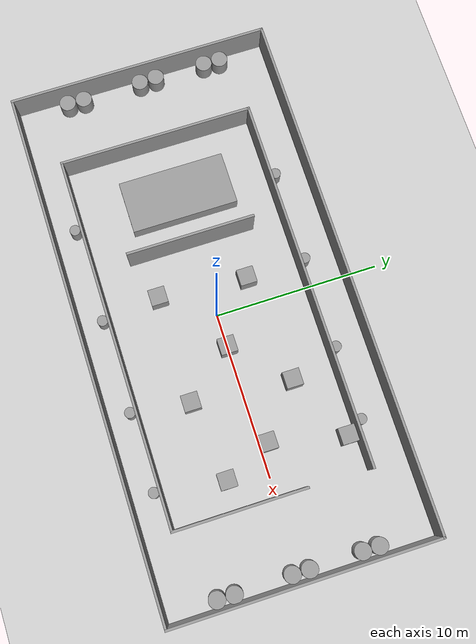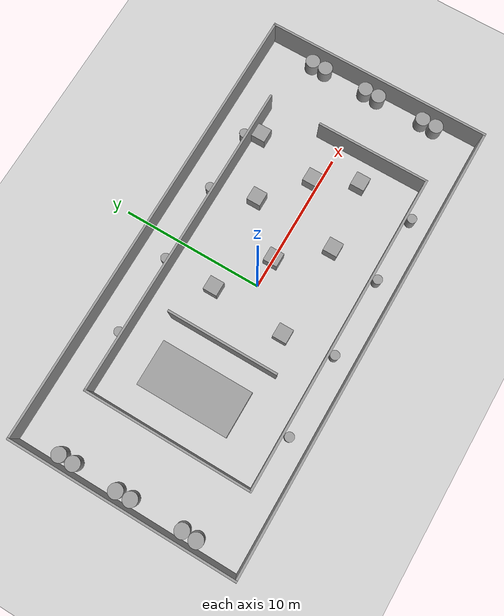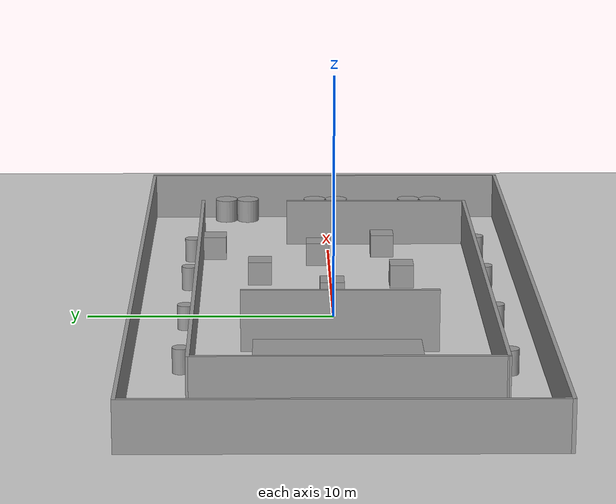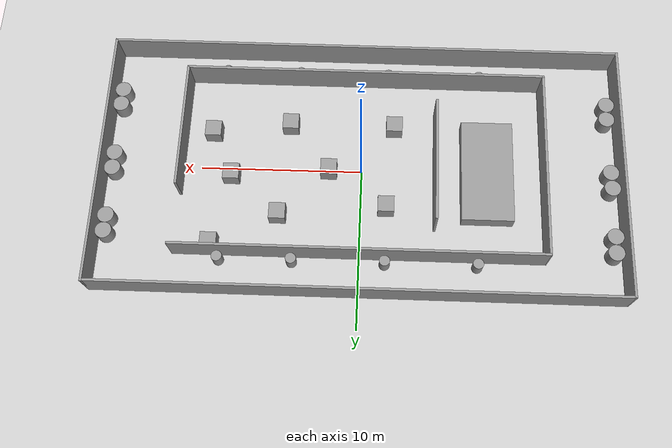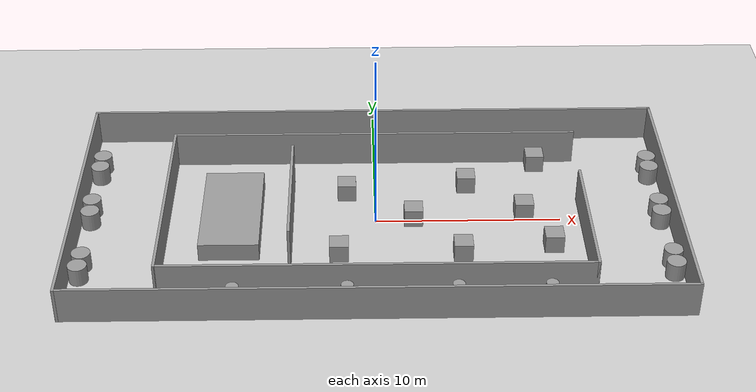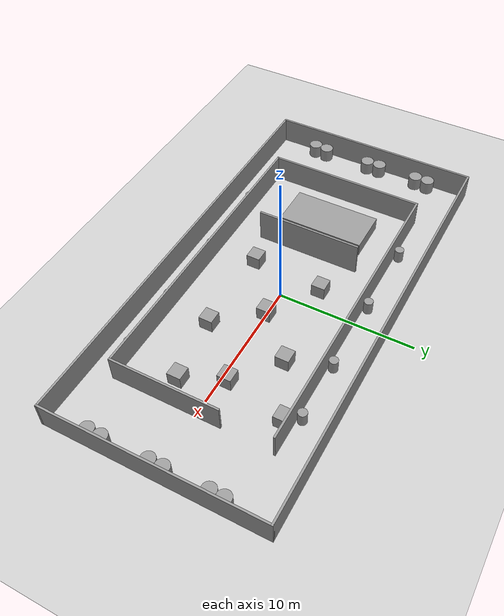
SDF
<sdf version="1.6">
 <world name="default">
  <light name="sun" type="directional">
   <pose>0 0 10 0 -0 0</pose>
   <diffuse>0.8 0.8 0.8 1</diffuse>
   <specular>0.1 0.1 0.1 1</specular>
   <attenuation>
    <range>1000</range>
    <constant>0.9</constant>
    <linear>0.01</linear>
    <quadratic>0.001</quadratic>
   </attenuation>
   <direction>-0.5 0.5 -1</direction>
  </light>
  <model name="ground_plane">
   <static>1</static>
   <link name="link">
    <collision name="collision">
     <geometry><plane><normal>0 0 1</normal><size>100 100</size></plane></geometry>
     <surface><friction><ode><mu>100</mu><mu2>50</mu2></ode></friction></surface>
    </collision>
    <visual name="visual">
     <cast_shadows>0</cast_shadows>
     <geometry><plane><normal>0 0 1</normal><size>100 100</size></plane></geometry>
     <material>
      <script><uri>file://media/materials/scripts/gazebo.material</uri><name>Gazebo/Grey</name></script>
     </material>
    </visual>
   </link>
  </model>
  <gravity>0 0 -9.8</gravity>
  <magnetic_field>6e-06 2.3e-05 -4.2e-05</magnetic_field>
  <atmosphere type="adiabatic"/>
  <physics name="default_physics" default="0" type="ode">
   <max_step_size>0.001</max_step_size>
   <real_time_factor>1</real_time_factor>
   <real_time_update_rate>1000</real_time_update_rate>
  </physics>
  <scene><ambient>0.4 0.4 0.4 1</ambient><background>0.7 0.7 0.7 1</background><shadows>1</shadows></scene>
  <spherical_coordinates>
   <surface_model>EARTH_WGS84</surface_model>
   <latitude_deg>0</latitude_deg>
   <longitude_deg>0</longitude_deg>
   <elevation>0</elevation>
   <heading_deg>0</heading_deg>
  </spherical_coordinates>
  <model name="small1_0">
   <pose>-0.012011 0.02676 0 0 -0 0</pose>
   <link name="Wall_0">
    <collision name="Wall_0_Collision">
     <geometry><box><size>32 0.15 2</size></box></geometry>
     <pose>0 0 1 0 -0 0</pose>
    </collision>
    <visual name="Wall_0_Visual">
     <pose>0 0 1 0 -0 0</pose>
     <geometry><box><size>32 0.15 2</size></box></geometry>
     <material>
      <script><uri>file://media/materials/scripts/gazebo.material</uri><name>Gazebo/Grey</name></script>
      <ambient>1 1 1 1</ambient>
     </material>
    </visual>
    <pose>0 7.925 0 0 -0 0</pose>
   </link>
   <link name="Wall_1">
    <collision name="Wall_1_Collision">
     <geometry><box><size>16 0.15 2</size></box></geometry>
     <pose>0 0 1 0 -0 0</pose>
    </collision>
    <visual name="Wall_1_Visual">
     <pose>0 0 1 0 -0 0</pose>
     <geometry><box><size>16 0.15 2</size></box></geometry>
     <material>
      <script><uri>file://media/materials/scripts/gazebo.material</uri><name>Gazebo/Grey</name></script>
      <ambient>1 1 1 1</ambient>
     </material>
    </visual>
    <pose>15.925 0 0 0 0 -1.5708</pose>
   </link>
   <link name="Wall_2">
    <collision name="Wall_2_Collision">
     <geometry><box><size>32 0.15 2</size></box></geometry>
     <pose>0 0 1 0 -0 0</pose>
    </collision>
    <visual name="Wall_2_Visual">
     <pose>0 0 1 0 -0 0</pose>
     <geometry><box><size>32 0.15 2</size></box></geometry>
     <material>
      <script><uri>file://media/materials/scripts/gazebo.material</uri><name>Gazebo/Grey</name></script>
      <ambient>1 1 1 1</ambient>
     </material>
    </visual>
    <pose>0 -7.925 0 0 -0 3.14159</pose>
   </link>
   <link name="Wall_3">
    <collision name="Wall_3_Collision">
     <geometry><box><size>16 0.15 2</size></box></geometry>
     <pose>0 0 1 0 -0 0</pose>
    </collision>
    <visual name="Wall_3_Visual">
     <pose>0 0 1 0 -0 0</pose>
     <geometry><box><size>16 0.15 2</size></box></geometry>
     <material>
      <script><uri>file://media/materials/scripts/gazebo.material</uri><name>Gazebo/Grey</name></script>
      <ambient>1 1 1 1</ambient>
     </material>
    </visual>
    <pose>-15.925 0 0 0 -0 1.5708</pose>
   </link>
   <link name="Wall_5">
    <collision name="Wall_5_Collision">
     <geometry><box><size>22.5533 0.15 2</size></box></geometry>
     <pose>0 0 1 0 -0 0</pose>
    </collision>
    <visual name="Wall_5_Visual">
     <pose>0 0 1 0 -0 0</pose>
     <geometry><box><size>22.5533 0.15 2</size></box></geometry>
     <material>
      <script><uri>file://media/materials/scripts/gazebo.material</uri><name>Gazebo/Grey</name></script>
      <ambient>1 1 1 1</ambient>
     </material>
    </visual>
    <pose>0.011635 5.53886 0 0 -0 3.14158</pose>
   </link>
   <link name="Wall_6">
    <collision name="Wall_6_Collision">
     <geometry><box><size>11.8219 0.15 2</size></box></geometry>
     <pose>0 0 1 0 -0 0</pose>
    </collision>
    <visual name="Wall_6_Visual">
     <pose>0 0 1 0 -0 0</pose>
     <geometry><box><size>11.8219 0.15 2</size></box></geometry>
     <material>
      <script><uri>file://media/materials/scripts/gazebo.material</uri><name>Gazebo/Grey</name></script>
      <ambient>1 1 1 1</ambient>
     </material>
    </visual>
    <pose>-11.199 -0.29697 0 0 0 -1.57234</pose>
   </link>
   <link name="Wall_7">
    <collision name="Wall_7_Collision">
     <geometry><box><size>22.5 0.15 2</size></box></geometry>
     <pose>0 0 1 0 -0 0</pose>
    </collision>
    <visual name="Wall_7_Visual">
     <pose>0 0 1 0 -0 0</pose>
     <geometry><box><size>22.5 0.15 2</size></box></geometry>
     <material>
      <script><uri>file://media/materials/scripts/gazebo.material</uri><name>Gazebo/Grey</name></script>
      <ambient>1 1 1 1</ambient>
     </material>
    </visual>
    <pose>-0.033 -6.13297 0 0 -0 0</pose>
   </link>
   <link name="Wall_8">
    <collision name="Wall_8_Collision">
     <geometry><box><size>8 0.15 2</size></box></geometry>
     <pose>0 0 1 0 -0 0</pose>
    </collision>
    <visual name="Wall_8_Visual">
     <pose>0 0 1 0 -0 0</pose>
     <geometry><box><size>8 0.15 2</size></box></geometry>
     <material>
      <script><uri>file://media/materials/scripts/gazebo.material</uri><name>Gazebo/Grey</name></script>
      <ambient>1 1 1 1</ambient>
     </material>
    </visual>
    <pose>11.142 -2.20797 0 0 -0 1.5708</pose>
   </link>
   <static>1</static>
  </model>
  <model name="small2">
   <pose>-4.53212 -0.151672 0 0 -0 0</pose>
   <link name="Wall_5">
    <collision name="Wall_5_Collision">
     <geometry><box><size>7.75 0.15 2.5</size></box></geometry>
     <pose>0 0 1.25 0 -0 0</pose>
    </collision>
    <visual name="Wall_5_Visual">
     <pose>0 0 1.25 0 -0 0</pose>
     <geometry><box><size>7.75 0.15 2.5</size></box></geometry>
     <material>
      <script><uri>file://media/materials/scripts/gazebo.material</uri><name>Gazebo/Grey</name></script>
      <ambient>1 1 1 1</ambient>
     </material>
    </visual>
    <pose>0 0 0 0 -0 1.5708</pose>
   </link>
   <static>1</static>
  </model>
  <model name="small3">
   <link name="link_0">
    <pose>-16.6431 0.747934 0 0 -0 0</pose>
    <inertial>
     <mass>1</mass>
     <inertia><ixx>0.145833</ixx><ixy>0</ixy><ixz>0</ixz><iyy>0.145833</iyy><iyz>0</iyz><izz>0.125</izz></inertia>
    </inertial>
    <visual name="visual">
     <geometry><cylinder><radius>0.5</radius><length>1</length></cylinder></geometry>
     <material>
      <lighting>1</lighting>
      <script><uri>file://media/materials/scripts/gazebo.material</uri><name>Gazebo/Grey</name></script>
      <ambient>0.3 0.3 0.3 1</ambient>
      <diffuse>0.7 0.7 0.7 1</diffuse>
      <specular>0.01 0.01 0.01 1</specular>
      <emissive>0 0 0 1</emissive>
     </material>
    </visual>
    <collision name="collision">
     <geometry><cylinder><radius>0.5</radius><length>1</length></cylinder></geometry>
     <surface>
      <friction>
       <ode><mu>1</mu><mu2>1</mu2><fdir1>0 0 0</fdir1><slip1>0</slip1><slip2>0</slip2></ode>
       <torsional>
        <coefficient>1</coefficient>
        <patch_radius>0</patch_radius>
        <surface_radius>0</surface_radius>
        <use_patch_radius>1</use_patch_radius>
        <ode><slip>0</slip></ode>
       </torsional>
      </friction>
      <bounce><restitution_coefficient>0</restitution_coefficient><threshold>1e+06</threshold></bounce>
      <contact>
       <collide_without_contact>0</collide_without_contact>
       <collide_without_contact_bitmask>1</collide_without_contact_bitmask>
       <collide_bitmask>1</collide_bitmask>
       <ode>
        <soft_cfm>0</soft_cfm>
        <soft_erp>0.2</soft_erp>
        <kp>1e+13</kp>
        <kd>1</kd>
        <max_vel>0.01</max_vel>
        <min_depth>0</min_depth>
       </ode>
       <bullet>
        <split_impulse>1</split_impulse>
        <split_impulse_penetration_threshold>-0.01</split_impulse_penetration_threshold>
        <soft_cfm>0</soft_cfm>
        <soft_erp>0.2</soft_erp>
        <kp>1e+13</kp>
        <kd>1</kd>
       </bullet>
      </contact>
     </surface>
    </collision>
   </link>
   <link name="link_1">
    <pose>-16.6059 -0.277647 0 0 -0 0</pose>
    <inertial>
     <mass>1</mass>
     <inertia><ixx>0.145833</ixx><ixy>0</ixy><ixz>0</ixz><iyy>0.145833</iyy><iyz>0</iyz><izz>0.125</izz></inertia>
    </inertial>
    <visual name="visual">
     <geometry><cylinder><radius>0.5</radius><length>1</length></cylinder></geometry>
     <material>
      <lighting>1</lighting>
      <script><uri>file://media/materials/scripts/gazebo.material</uri><name>Gazebo/Grey</name></script>
      <ambient>0.3 0.3 0.3 1</ambient>
      <diffuse>0.7 0.7 0.7 1</diffuse>
      <specular>0.01 0.01 0.01 1</specular>
      <emissive>0 0 0 1</emissive>
     </material>
    </visual>
    <collision name="collision">
     <geometry><cylinder><radius>0.5</radius><length>1</length></cylinder></geometry>
     <surface>
      <friction>
       <ode><mu>1</mu><mu2>1</mu2><fdir1>0 0 0</fdir1><slip1>0</slip1><slip2>0</slip2></ode>
       <torsional>
        <coefficient>1</coefficient>
        <patch_radius>0</patch_radius>
        <surface_radius>0</surface_radius>
        <use_patch_radius>1</use_patch_radius>
        <ode><slip>0</slip></ode>
       </torsional>
      </friction>
      <bounce><restitution_coefficient>0</restitution_coefficient><threshold>1e+06</threshold></bounce>
      <contact>
       <collide_without_contact>0</collide_without_contact>
       <collide_without_contact_bitmask>1</collide_without_contact_bitmask>
       <collide_bitmask>1</collide_bitmask>
       <ode>
        <soft_cfm>0</soft_cfm>
        <soft_erp>0.2</soft_erp>
        <kp>1e+13</kp>
        <kd>1</kd>
        <max_vel>0.01</max_vel>
        <min_depth>0</min_depth>
       </ode>
       <bullet>
        <split_impulse>1</split_impulse>
        <split_impulse_penetration_threshold>-0.01</split_impulse_penetration_threshold>
        <soft_cfm>0</soft_cfm>
        <soft_erp>0.2</soft_erp>
        <kp>1e+13</kp>
        <kd>1</kd>
       </bullet>
      </contact>
     </surface>
    </collision>
   </link>
   <link name="link_10">
    <pose>14.0914 -4.02283 0 0 -0 0</pose>
    <inertial>
     <mass>1</mass>
     <inertia><ixx>0.145833</ixx><ixy>0</ixy><ixz>0</ixz><iyy>0.145833</iyy><iyz>0</iyz><izz>0.125</izz></inertia>
    </inertial>
    <visual name="visual">
     <geometry><cylinder><radius>0.5</radius><length>1</length></cylinder></geometry>
     <material>
      <lighting>1</lighting>
      <script><uri>file://media/materials/scripts/gazebo.material</uri><name>Gazebo/Grey</name></script>
      <ambient>0.3 0.3 0.3 1</ambient>
      <diffuse>0.7 0.7 0.7 1</diffuse>
      <specular>0.01 0.01 0.01 1</specular>
      <emissive>0 0 0 1</emissive>
     </material>
    </visual>
    <collision name="collision">
     <geometry><cylinder><radius>0.5</radius><length>1</length></cylinder></geometry>
     <surface>
      <friction>
       <ode><mu>1</mu><mu2>1</mu2><fdir1>0 0 0</fdir1><slip1>0</slip1><slip2>0</slip2></ode>
       <torsional>
        <coefficient>1</coefficient>
        <patch_radius>0</patch_radius>
        <surface_radius>0</surface_radius>
        <use_patch_radius>1</use_patch_radius>
        <ode><slip>0</slip></ode>
       </torsional>
      </friction>
      <bounce><restitution_coefficient>0</restitution_coefficient><threshold>1e+06</threshold></bounce>
      <contact>
       <collide_without_contact>0</collide_without_contact>
       <collide_without_contact_bitmask>1</collide_without_contact_bitmask>
       <collide_bitmask>1</collide_bitmask>
       <ode>
        <soft_cfm>0</soft_cfm>
        <soft_erp>0.2</soft_erp>
        <kp>1e+13</kp>
        <kd>1</kd>
        <max_vel>0.01</max_vel>
        <min_depth>0</min_depth>
       </ode>
       <bullet>
        <split_impulse>1</split_impulse>
        <split_impulse_penetration_threshold>-0.01</split_impulse_penetration_threshold>
        <soft_cfm>0</soft_cfm>
        <soft_erp>0.2</soft_erp>
        <kp>1e+13</kp>
        <kd>1</kd>
       </bullet>
      </contact>
     </surface>
    </collision>
   </link>
   <link name="link_11">
    <pose>14.0626 -5.02017 0 0 -0 0</pose>
    <inertial>
     <mass>1</mass>
     <inertia><ixx>0.145833</ixx><ixy>0</ixy><ixz>0</ixz><iyy>0.145833</iyy><iyz>0</iyz><izz>0.125</izz></inertia>
    </inertial>
    <visual name="visual">
     <geometry><cylinder><radius>0.5</radius><length>1</length></cylinder></geometry>
     <material>
      <lighting>1</lighting>
      <script><uri>file://media/materials/scripts/gazebo.material</uri><name>Gazebo/Grey</name></script>
      <ambient>0.3 0.3 0.3 1</ambient>
      <diffuse>0.7 0.7 0.7 1</diffuse>
      <specular>0.01 0.01 0.01 1</specular>
      <emissive>0 0 0 1</emissive>
     </material>
    </visual>
    <collision name="collision">
     <geometry><cylinder><radius>0.5</radius><length>1</length></cylinder></geometry>
     <surface>
      <friction>
       <ode><mu>1</mu><mu2>1</mu2><fdir1>0 0 0</fdir1><slip1>0</slip1><slip2>0</slip2></ode>
       <torsional>
        <coefficient>1</coefficient>
        <patch_radius>0</patch_radius>
        <surface_radius>0</surface_radius>
        <use_patch_radius>1</use_patch_radius>
        <ode><slip>0</slip></ode>
       </torsional>
      </friction>
      <bounce><restitution_coefficient>0</restitution_coefficient><threshold>1e+06</threshold></bounce>
      <contact>
       <collide_without_contact>0</collide_without_contact>
       <collide_without_contact_bitmask>1</collide_without_contact_bitmask>
       <collide_bitmask>1</collide_bitmask>
       <ode>
        <soft_cfm>0</soft_cfm>
        <soft_erp>0.2</soft_erp>
        <kp>1e+13</kp>
        <kd>1</kd>
        <max_vel>0.01</max_vel>
        <min_depth>0</min_depth>
       </ode>
       <bullet>
        <split_impulse>1</split_impulse>
        <split_impulse_penetration_threshold>-0.01</split_impulse_penetration_threshold>
        <soft_cfm>0</soft_cfm>
        <soft_erp>0.2</soft_erp>
        <kp>1e+13</kp>
        <kd>1</kd>
       </bullet>
      </contact>
     </surface>
    </collision>
   </link>
   <link name="link_12">
    <pose>-9.01022 -0.153541 0 0 -0 0</pose>
    <inertial>
     <mass>20.6033</mass>
     <inertia><ixx>73.5571</ixx><ixy>0</ixy><ixz>0</ixz><iyy>19.1357</iyy><iyz>0</iyz><izz>89.2589</izz></inertia>
    </inertial>
    <visual name="visual">
     <geometry><box><size>3.18516 6.46853 1</size></box></geometry>
     <material>
      <lighting>1</lighting>
      <script><uri>file://media/materials/scripts/gazebo.material</uri><name>Gazebo/Grey</name></script>
      <ambient>0.3 0.3 0.3 1</ambient>
      <diffuse>0.7 0.7 0.7 1</diffuse>
      <specular>0.01 0.01 0.01 1</specular>
      <emissive>0 0 0 1</emissive>
     </material>
    </visual>
    <collision name="collision">
     <geometry><box><size>3.18516 6.46853 1</size></box></geometry>
     <surface>
      <friction>
       <ode><mu>1</mu><mu2>1</mu2><fdir1>0 0 0</fdir1><slip1>0</slip1><slip2>0</slip2></ode>
       <torsional>
        <coefficient>1</coefficient>
        <patch_radius>0</patch_radius>
        <surface_radius>0</surface_radius>
        <use_patch_radius>1</use_patch_radius>
        <ode><slip>0</slip></ode>
       </torsional>
      </friction>
      <bounce><restitution_coefficient>0</restitution_coefficient><threshold>1e+06</threshold></bounce>
      <contact>
       <collide_without_contact>0</collide_without_contact>
       <collide_without_contact_bitmask>1</collide_without_contact_bitmask>
       <collide_bitmask>1</collide_bitmask>
       <ode>
        <soft_cfm>0</soft_cfm>
        <soft_erp>0.2</soft_erp>
        <kp>1e+13</kp>
        <kd>1</kd>
        <max_vel>0.01</max_vel>
        <min_depth>0</min_depth>
       </ode>
       <bullet>
        <split_impulse>1</split_impulse>
        <split_impulse_penetration_threshold>-0.01</split_impulse_penetration_threshold>
        <soft_cfm>0</soft_cfm>
        <soft_erp>0.2</soft_erp>
        <kp>1e+13</kp>
        <kd>1</kd>
       </bullet>
      </contact>
     </surface>
    </collision>
   </link>
   <link name="link_13">
    <pose>-2.83875 2.19124 0 0 -0 0</pose>
    <inertial>
     <mass>1</mass>
     <inertia>
      <ixx>0.166667</ixx>
      <ixy>0</ixy>
      <ixz>0</ixz>
      <iyy>0.166667</iyy>
      <iyz>0</iyz>
      <izz>0.166667</izz>
     </inertia>
    </inertial>
    <visual name="visual">
     <geometry><box><size>1 1 1</size></box></geometry>
     <material>
      <lighting>1</lighting>
      <script><uri>file://media/materials/scripts/gazebo.material</uri><name>Gazebo/Grey</name></script>
      <ambient>0.3 0.3 0.3 1</ambient>
      <diffuse>0.7 0.7 0.7 1</diffuse>
      <specular>0.01 0.01 0.01 1</specular>
      <emissive>0 0 0 1</emissive>
     </material>
    </visual>
    <collision name="collision">
     <geometry><box><size>1 1 1</size></box></geometry>
     <surface>
      <friction>
       <ode><mu>1</mu><mu2>1</mu2><fdir1>0 0 0</fdir1><slip1>0</slip1><slip2>0</slip2></ode>
       <torsional>
        <coefficient>1</coefficient>
        <patch_radius>0</patch_radius>
        <surface_radius>0</surface_radius>
        <use_patch_radius>1</use_patch_radius>
        <ode><slip>0</slip></ode>
       </torsional>
      </friction>
      <bounce><restitution_coefficient>0</restitution_coefficient><threshold>1e+06</threshold></bounce>
      <contact>
       <collide_without_contact>0</collide_without_contact>
       <collide_without_contact_bitmask>1</collide_without_contact_bitmask>
       <collide_bitmask>1</collide_bitmask>
       <ode>
        <soft_cfm>0</soft_cfm>
        <soft_erp>0.2</soft_erp>
        <kp>1e+13</kp>
        <kd>1</kd>
        <max_vel>0.01</max_vel>
        <min_depth>0</min_depth>
       </ode>
       <bullet>
        <split_impulse>1</split_impulse>
        <split_impulse_penetration_threshold>-0.01</split_impulse_penetration_threshold>
        <soft_cfm>0</soft_cfm>
        <soft_erp>0.2</soft_erp>
        <kp>1e+13</kp>
        <kd>1</kd>
       </bullet>
      </contact>
     </surface>
    </collision>
   </link>
   <link name="link_14">
    <pose>-3.24963 -3.15672 0 0 -0 0</pose>
    <inertial>
     <mass>1</mass>
     <inertia>
      <ixx>0.166667</ixx>
      <ixy>0</ixy>
      <ixz>0</ixz>
      <iyy>0.166667</iyy>
      <iyz>0</iyz>
      <izz>0.166667</izz>
     </inertia>
    </inertial>
    <visual name="visual">
     <geometry><box><size>1 1 1</size></box></geometry>
     <material>
      <lighting>1</lighting>
      <script><uri>file://media/materials/scripts/gazebo.material</uri><name>Gazebo/Grey</name></script>
      <ambient>0.3 0.3 0.3 1</ambient>
      <diffuse>0.7 0.7 0.7 1</diffuse>
      <specular>0.01 0.01 0.01 1</specular>
      <emissive>0 0 0 1</emissive>
     </material>
    </visual>
    <collision name="collision">
     <geometry><box><size>1 1 1</size></box></geometry>
     <surface>
      <friction>
       <ode><mu>1</mu><mu2>1</mu2><fdir1>0 0 0</fdir1><slip1>0</slip1><slip2>0</slip2></ode>
       <torsional>
        <coefficient>1</coefficient>
        <patch_radius>0</patch_radius>
        <surface_radius>0</surface_radius>
        <use_patch_radius>1</use_patch_radius>
        <ode><slip>0</slip></ode>
       </torsional>
      </friction>
      <bounce><restitution_coefficient>0</restitution_coefficient><threshold>1e+06</threshold></bounce>
      <contact>
       <collide_without_contact>0</collide_without_contact>
       <collide_without_contact_bitmask>1</collide_without_contact_bitmask>
       <collide_bitmask>1</collide_bitmask>
       <ode>
        <soft_cfm>0</soft_cfm>
        <soft_erp>0.2</soft_erp>
        <kp>1e+13</kp>
        <kd>1</kd>
        <max_vel>0.01</max_vel>
        <min_depth>0</min_depth>
       </ode>
       <bullet>
        <split_impulse>1</split_impulse>
        <split_impulse_penetration_threshold>-0.01</split_impulse_penetration_threshold>
        <soft_cfm>0</soft_cfm>
        <soft_erp>0.2</soft_erp>
        <kp>1e+13</kp>
        <kd>1</kd>
       </bullet>
      </contact>
     </surface>
    </collision>
   </link>
   <link name="link_15">
    <pose>0.750368 -0.156716 0 0 -0 0</pose>
    <inertial>
     <mass>1</mass>
     <inertia>
      <ixx>0.166667</ixx>
      <ixy>0</ixy>
      <ixz>0</ixz>
      <iyy>0.166667</iyy>
      <iyz>0</iyz>
      <izz>0.166667</izz>
     </inertia>
    </inertial>
    <visual name="visual">
     <geometry><box><size>1 1 1</size></box></geometry>
     <material>
      <lighting>1</lighting>
      <script><uri>file://media/materials/scripts/gazebo.material</uri><name>Gazebo/Grey</name></script>
      <ambient>0.3 0.3 0.3 1</ambient>
      <diffuse>0.7 0.7 0.7 1</diffuse>
      <specular>0.01 0.01 0.01 1</specular>
      <emissive>0 0 0 1</emissive>
     </material>
    </visual>
    <collision name="collision">
     <geometry><box><size>1 1 1</size></box></geometry>
     <surface>
      <friction>
       <ode><mu>1</mu><mu2>1</mu2><fdir1>0 0 0</fdir1><slip1>0</slip1><slip2>0</slip2></ode>
       <torsional>
        <coefficient>1</coefficient>
        <patch_radius>0</patch_radius>
        <surface_radius>0</surface_radius>
        <use_patch_radius>1</use_patch_radius>
        <ode><slip>0</slip></ode>
       </torsional>
      </friction>
      <bounce><restitution_coefficient>0</restitution_coefficient><threshold>1e+06</threshold></bounce>
      <contact>
       <collide_without_contact>0</collide_without_contact>
       <collide_without_contact_bitmask>1</collide_without_contact_bitmask>
       <collide_bitmask>1</collide_bitmask>
       <ode>
        <soft_cfm>0</soft_cfm>
        <soft_erp>0.2</soft_erp>
        <kp>1e+13</kp>
        <kd>1</kd>
        <max_vel>0.01</max_vel>
        <min_depth>0</min_depth>
       </ode>
       <bullet>
        <split_impulse>1</split_impulse>
        <split_impulse_penetration_threshold>-0.01</split_impulse_penetration_threshold>
        <soft_cfm>0</soft_cfm>
        <soft_erp>0.2</soft_erp>
        <kp>1e+13</kp>
        <kd>1</kd>
       </bullet>
      </contact>
     </surface>
    </collision>
   </link>
   <link name="link_16">
    <pose>7.75037 4.84328 0 0 -0 0</pose>
    <inertial>
     <mass>1</mass>
     <inertia>
      <ixx>0.166667</ixx>
      <ixy>0</ixy>
      <ixz>0</ixz>
      <iyy>0.166667</iyy>
      <iyz>0</iyz>
      <izz>0.166667</izz>
     </inertia>
    </inertial>
    <visual name="visual">
     <geometry><box><size>1 1 1</size></box></geometry>
     <material>
      <lighting>1</lighting>
      <script><uri>file://media/materials/scripts/gazebo.material</uri><name>Gazebo/Grey</name></script>
      <ambient>0.3 0.3 0.3 1</ambient>
      <diffuse>0.7 0.7 0.7 1</diffuse>
      <specular>0.01 0.01 0.01 1</specular>
      <emissive>0 0 0 1</emissive>
     </material>
    </visual>
    <collision name="collision">
     <geometry><box><size>1 1 1</size></box></geometry>
     <surface>
      <friction>
       <ode><mu>1</mu><mu2>1</mu2><fdir1>0 0 0</fdir1><slip1>0</slip1><slip2>0</slip2></ode>
       <torsional>
        <coefficient>1</coefficient>
        <patch_radius>0</patch_radius>
        <surface_radius>0</surface_radius>
        <use_patch_radius>1</use_patch_radius>
        <ode><slip>0</slip></ode>
       </torsional>
      </friction>
      <bounce><restitution_coefficient>0</restitution_coefficient><threshold>1e+06</threshold></bounce>
      <contact>
       <collide_without_contact>0</collide_without_contact>
       <collide_without_contact_bitmask>1</collide_without_contact_bitmask>
       <collide_bitmask>1</collide_bitmask>
       <ode>
        <soft_cfm>0</soft_cfm>
        <soft_erp>0.2</soft_erp>
        <kp>1e+13</kp>
        <kd>1</kd>
        <max_vel>0.01</max_vel>
        <min_depth>0</min_depth>
       </ode>
       <bullet>
        <split_impulse>1</split_impulse>
        <split_impulse_penetration_threshold>-0.01</split_impulse_penetration_threshold>
        <soft_cfm>0</soft_cfm>
        <soft_erp>0.2</soft_erp>
        <kp>1e+13</kp>
        <kd>1</kd>
       </bullet>
      </contact>
     </surface>
    </collision>
   </link>
   <link name="link_17">
    <pose>8.07926 -2.5215 0 0 -0 0</pose>
    <inertial>
     <mass>1</mass>
     <inertia>
      <ixx>0.166667</ixx>
      <ixy>0</ixy>
      <ixz>0</ixz>
      <iyy>0.166667</iyy>
      <iyz>0</iyz>
      <izz>0.166667</izz>
     </inertia>
    </inertial>
    <visual name="visual">
     <geometry><box><size>1 1 1</size></box></geometry>
     <material>
      <lighting>1</lighting>
      <script><uri>file://media/materials/scripts/gazebo.material</uri><name>Gazebo/Grey</name></script>
      <ambient>0.3 0.3 0.3 1</ambient>
      <diffuse>0.7 0.7 0.7 1</diffuse>
      <specular>0.01 0.01 0.01 1</specular>
      <emissive>0 0 0 1</emissive>
     </material>
    </visual>
    <collision name="collision">
     <geometry><box><size>1 1 1</size></box></geometry>
     <surface>
      <friction>
       <ode><mu>1</mu><mu2>1</mu2><fdir1>0 0 0</fdir1><slip1>0</slip1><slip2>0</slip2></ode>
       <torsional>
        <coefficient>1</coefficient>
        <patch_radius>0</patch_radius>
        <surface_radius>0</surface_radius>
        <use_patch_radius>1</use_patch_radius>
        <ode><slip>0</slip></ode>
       </torsional>
      </friction>
      <bounce><restitution_coefficient>0</restitution_coefficient><threshold>1e+06</threshold></bounce>
      <contact>
       <collide_without_contact>0</collide_without_contact>
       <collide_without_contact_bitmask>1</collide_without_contact_bitmask>
       <collide_bitmask>1</collide_bitmask>
       <ode>
        <soft_cfm>0</soft_cfm>
        <soft_erp>0.2</soft_erp>
        <kp>1e+13</kp>
        <kd>1</kd>
        <max_vel>0.01</max_vel>
        <min_depth>0</min_depth>
       </ode>
       <bullet>
        <split_impulse>1</split_impulse>
        <split_impulse_penetration_threshold>-0.01</split_impulse_penetration_threshold>
        <soft_cfm>0</soft_cfm>
        <soft_erp>0.2</soft_erp>
        <kp>1e+13</kp>
        <kd>1</kd>
       </bullet>
      </contact>
     </surface>
    </collision>
   </link>
   <link name="link_18">
    <pose>3.75037 2.84328 0 0 -0 0</pose>
    <inertial>
     <mass>1</mass>
     <inertia>
      <ixx>0.166667</ixx>
      <ixy>0</ixy>
      <ixz>0</ixz>
      <iyy>0.166667</iyy>
      <iyz>0</iyz>
      <izz>0.166667</izz>
     </inertia>
    </inertial>
    <visual name="visual">
     <geometry><box><size>1 1 1</size></box></geometry>
     <material>
      <lighting>1</lighting>
      <script><uri>file://media/materials/scripts/gazebo.material</uri><name>Gazebo/Grey</name></script>
      <ambient>0.3 0.3 0.3 1</ambient>
      <diffuse>0.7 0.7 0.7 1</diffuse>
      <specular>0.01 0.01 0.01 1</specular>
      <emissive>0 0 0 1</emissive>
     </material>
    </visual>
    <collision name="collision">
     <geometry><box><size>1 1 1</size></box></geometry>
     <surface>
      <friction>
       <ode><mu>1</mu><mu2>1</mu2><fdir1>0 0 0</fdir1><slip1>0</slip1><slip2>0</slip2></ode>
       <torsional>
        <coefficient>1</coefficient>
        <patch_radius>0</patch_radius>
        <surface_radius>0</surface_radius>
        <use_patch_radius>1</use_patch_radius>
        <ode><slip>0</slip></ode>
       </torsional>
      </friction>
      <bounce><restitution_coefficient>0</restitution_coefficient><threshold>1e+06</threshold></bounce>
      <contact>
       <collide_without_contact>0</collide_without_contact>
       <collide_without_contact_bitmask>1</collide_without_contact_bitmask>
       <collide_bitmask>1</collide_bitmask>
       <ode>
        <soft_cfm>0</soft_cfm>
        <soft_erp>0.2</soft_erp>
        <kp>1e+13</kp>
        <kd>1</kd>
        <max_vel>0.01</max_vel>
        <min_depth>0</min_depth>
       </ode>
       <bullet>
        <split_impulse>1</split_impulse>
        <split_impulse_penetration_threshold>-0.01</split_impulse_penetration_threshold>
        <soft_cfm>0</soft_cfm>
        <soft_erp>0.2</soft_erp>
        <kp>1e+13</kp>
        <kd>1</kd>
       </bullet>
      </contact>
     </surface>
    </collision>
   </link>
   <link name="link_19">
    <pose>3.26147 -3.15672 0 0 -0 0</pose>
    <inertial>
     <mass>1</mass>
     <inertia>
      <ixx>0.166667</ixx>
      <ixy>0</ixy>
      <ixz>0</ixz>
      <iyy>0.166667</iyy>
      <iyz>0</iyz>
      <izz>0.166667</izz>
     </inertia>
    </inertial>
    <visual name="visual">
     <geometry><box><size>1 1 1</size></box></geometry>
     <material>
      <lighting>1</lighting>
      <script><uri>file://media/materials/scripts/gazebo.material</uri><name>Gazebo/Grey</name></script>
      <ambient>0.3 0.3 0.3 1</ambient>
      <diffuse>0.7 0.7 0.7 1</diffuse>
      <specular>0.01 0.01 0.01 1</specular>
      <emissive>0 0 0 1</emissive>
     </material>
    </visual>
    <collision name="collision">
     <geometry><box><size>1 1 1</size></box></geometry>
     <surface>
      <friction>
       <ode><mu>1</mu><mu2>1</mu2><fdir1>0 0 0</fdir1><slip1>0</slip1><slip2>0</slip2></ode>
       <torsional>
        <coefficient>1</coefficient>
        <patch_radius>0</patch_radius>
        <surface_radius>0</surface_radius>
        <use_patch_radius>1</use_patch_radius>
        <ode><slip>0</slip></ode>
       </torsional>
      </friction>
      <bounce><restitution_coefficient>0</restitution_coefficient><threshold>1e+06</threshold></bounce>
      <contact>
       <collide_without_contact>0</collide_without_contact>
       <collide_without_contact_bitmask>1</collide_without_contact_bitmask>
       <collide_bitmask>1</collide_bitmask>
       <ode>
        <soft_cfm>0</soft_cfm>
        <soft_erp>0.2</soft_erp>
        <kp>1e+13</kp>
        <kd>1</kd>
        <max_vel>0.01</max_vel>
        <min_depth>0</min_depth>
       </ode>
       <bullet>
        <split_impulse>1</split_impulse>
        <split_impulse_penetration_threshold>-0.01</split_impulse_penetration_threshold>
        <soft_cfm>0</soft_cfm>
        <soft_erp>0.2</soft_erp>
        <kp>1e+13</kp>
        <kd>1</kd>
       </bullet>
      </contact>
     </surface>
    </collision>
   </link>
   <link name="link_2">
    <pose>-16.5904 4.87233 0 0 -0 0</pose>
    <inertial>
     <mass>1</mass>
     <inertia><ixx>0.145833</ixx><ixy>0</ixy><ixz>0</ixz><iyy>0.145833</iyy><iyz>0</iyz><izz>0.125</izz></inertia>
    </inertial>
    <visual name="visual">
     <geometry><cylinder><radius>0.5</radius><length>1</length></cylinder></geometry>
     <material>
      <lighting>1</lighting>
      <script><uri>file://media/materials/scripts/gazebo.material</uri><name>Gazebo/Grey</name></script>
      <ambient>0.3 0.3 0.3 1</ambient>
      <diffuse>0.7 0.7 0.7 1</diffuse>
      <specular>0.01 0.01 0.01 1</specular>
      <emissive>0 0 0 1</emissive>
     </material>
    </visual>
    <collision name="collision">
     <geometry><cylinder><radius>0.5</radius><length>1</length></cylinder></geometry>
     <surface>
      <friction>
       <ode><mu>1</mu><mu2>1</mu2><fdir1>0 0 0</fdir1><slip1>0</slip1><slip2>0</slip2></ode>
       <torsional>
        <coefficient>1</coefficient>
        <patch_radius>0</patch_radius>
        <surface_radius>0</surface_radius>
        <use_patch_radius>1</use_patch_radius>
        <ode><slip>0</slip></ode>
       </torsional>
      </friction>
      <bounce><restitution_coefficient>0</restitution_coefficient><threshold>1e+06</threshold></bounce>
      <contact>
       <collide_without_contact>0</collide_without_contact>
       <collide_without_contact_bitmask>1</collide_without_contact_bitmask>
       <collide_bitmask>1</collide_bitmask>
       <ode>
        <soft_cfm>0</soft_cfm>
        <soft_erp>0.2</soft_erp>
        <kp>1e+13</kp>
        <kd>1</kd>
        <max_vel>0.01</max_vel>
        <min_depth>0</min_depth>
       </ode>
       <bullet>
        <split_impulse>1</split_impulse>
        <split_impulse_penetration_threshold>-0.01</split_impulse_penetration_threshold>
        <soft_cfm>0</soft_cfm>
        <soft_erp>0.2</soft_erp>
        <kp>1e+13</kp>
        <kd>1</kd>
       </bullet>
      </contact>
     </surface>
    </collision>
   </link>
   <link name="link_20">
    <pose>6.75037 0.335633 0 0 -0 0</pose>
    <inertial>
     <mass>1</mass>
     <inertia>
      <ixx>0.166667</ixx>
      <ixy>0</ixy>
      <ixz>0</ixz>
      <iyy>0.166667</iyy>
      <iyz>0</iyz>
      <izz>0.166667</izz>
     </inertia>
    </inertial>
    <visual name="visual">
     <geometry><box><size>1 1 1</size></box></geometry>
     <material>
      <lighting>1</lighting>
      <script><uri>file://media/materials/scripts/gazebo.material</uri><name>Gazebo/Grey</name></script>
      <ambient>0.3 0.3 0.3 1</ambient>
      <diffuse>0.7 0.7 0.7 1</diffuse>
      <specular>0.01 0.01 0.01 1</specular>
      <emissive>0 0 0 1</emissive>
     </material>
    </visual>
    <collision name="collision">
     <geometry><box><size>1 1 1</size></box></geometry>
     <surface>
      <friction>
       <ode><mu>1</mu><mu2>1</mu2><fdir1>0 0 0</fdir1><slip1>0</slip1><slip2>0</slip2></ode>
       <torsional>
        <coefficient>1</coefficient>
        <patch_radius>0</patch_radius>
        <surface_radius>0</surface_radius>
        <use_patch_radius>1</use_patch_radius>
        <ode><slip>0</slip></ode>
       </torsional>
      </friction>
      <bounce><restitution_coefficient>0</restitution_coefficient><threshold>1e+06</threshold></bounce>
      <contact>
       <collide_without_contact>0</collide_without_contact>
       <collide_without_contact_bitmask>1</collide_without_contact_bitmask>
       <collide_bitmask>1</collide_bitmask>
       <ode>
        <soft_cfm>0</soft_cfm>
        <soft_erp>0.2</soft_erp>
        <kp>1e+13</kp>
        <kd>1</kd>
        <max_vel>0.01</max_vel>
        <min_depth>0</min_depth>
       </ode>
       <bullet>
        <split_impulse>1</split_impulse>
        <split_impulse_penetration_threshold>-0.01</split_impulse_penetration_threshold>
        <soft_cfm>0</soft_cfm>
        <soft_erp>0.2</soft_erp>
        <kp>1e+13</kp>
        <kd>1</kd>
       </bullet>
      </contact>
     </surface>
    </collision>
   </link>
   <link name="link_3">
    <pose>-16.6101 3.85615 0 0 -0 0</pose>
    <inertial>
     <mass>1</mass>
     <inertia><ixx>0.145833</ixx><ixy>0</ixy><ixz>0</ixz><iyy>0.145833</iyy><iyz>0</iyz><izz>0.125</izz></inertia>
    </inertial>
    <visual name="visual">
     <geometry><cylinder><radius>0.5</radius><length>1</length></cylinder></geometry>
     <material>
      <lighting>1</lighting>
      <script><uri>file://media/materials/scripts/gazebo.material</uri><name>Gazebo/Grey</name></script>
      <ambient>0.3 0.3 0.3 1</ambient>
      <diffuse>0.7 0.7 0.7 1</diffuse>
      <specular>0.01 0.01 0.01 1</specular>
      <emissive>0 0 0 1</emissive>
     </material>
    </visual>
    <collision name="collision">
     <geometry><cylinder><radius>0.5</radius><length>1</length></cylinder></geometry>
     <surface>
      <friction>
       <ode><mu>1</mu><mu2>1</mu2><fdir1>0 0 0</fdir1><slip1>0</slip1><slip2>0</slip2></ode>
       <torsional>
        <coefficient>1</coefficient>
        <patch_radius>0</patch_radius>
        <surface_radius>0</surface_radius>
        <use_patch_radius>1</use_patch_radius>
        <ode><slip>0</slip></ode>
       </torsional>
      </friction>
      <bounce><restitution_coefficient>0</restitution_coefficient><threshold>1e+06</threshold></bounce>
      <contact>
       <collide_without_contact>0</collide_without_contact>
       <collide_without_contact_bitmask>1</collide_without_contact_bitmask>
       <collide_bitmask>1</collide_bitmask>
       <ode>
        <soft_cfm>0</soft_cfm>
        <soft_erp>0.2</soft_erp>
        <kp>1e+13</kp>
        <kd>1</kd>
        <max_vel>0.01</max_vel>
        <min_depth>0</min_depth>
       </ode>
       <bullet>
        <split_impulse>1</split_impulse>
        <split_impulse_penetration_threshold>-0.01</split_impulse_penetration_threshold>
        <soft_cfm>0</soft_cfm>
        <soft_erp>0.2</soft_erp>
        <kp>1e+13</kp>
        <kd>1</kd>
       </bullet>
      </contact>
     </surface>
    </collision>
   </link>
   <link name="link_4">
    <pose>-16.5639 -3.89963 0 0 -0 0</pose>
    <inertial>
     <mass>1</mass>
     <inertia><ixx>0.145833</ixx><ixy>0</ixy><ixz>0</ixz><iyy>0.145833</iyy><iyz>0</iyz><izz>0.125</izz></inertia>
    </inertial>
    <visual name="visual">
     <geometry><cylinder><radius>0.5</radius><length>1</length></cylinder></geometry>
     <material>
      <lighting>1</lighting>
      <script><uri>file://media/materials/scripts/gazebo.material</uri><name>Gazebo/Grey</name></script>
      <ambient>0.3 0.3 0.3 1</ambient>
      <diffuse>0.7 0.7 0.7 1</diffuse>
      <specular>0.01 0.01 0.01 1</specular>
      <emissive>0 0 0 1</emissive>
     </material>
    </visual>
    <collision name="collision">
     <geometry><cylinder><radius>0.5</radius><length>1</length></cylinder></geometry>
     <surface>
      <friction>
       <ode><mu>1</mu><mu2>1</mu2><fdir1>0 0 0</fdir1><slip1>0</slip1><slip2>0</slip2></ode>
       <torsional>
        <coefficient>1</coefficient>
        <patch_radius>0</patch_radius>
        <surface_radius>0</surface_radius>
        <use_patch_radius>1</use_patch_radius>
        <ode><slip>0</slip></ode>
       </torsional>
      </friction>
      <bounce><restitution_coefficient>0</restitution_coefficient><threshold>1e+06</threshold></bounce>
      <contact>
       <collide_without_contact>0</collide_without_contact>
       <collide_without_contact_bitmask>1</collide_without_contact_bitmask>
       <collide_bitmask>1</collide_bitmask>
       <ode>
        <soft_cfm>0</soft_cfm>
        <soft_erp>0.2</soft_erp>
        <kp>1e+13</kp>
        <kd>1</kd>
        <max_vel>0.01</max_vel>
        <min_depth>0</min_depth>
       </ode>
       <bullet>
        <split_impulse>1</split_impulse>
        <split_impulse_penetration_threshold>-0.01</split_impulse_penetration_threshold>
        <soft_cfm>0</soft_cfm>
        <soft_erp>0.2</soft_erp>
        <kp>1e+13</kp>
        <kd>1</kd>
       </bullet>
      </contact>
     </surface>
    </collision>
   </link>
   <link name="link_5">
    <pose>-16.6082 -4.90752 0 0 -0 0</pose>
    <inertial>
     <mass>1</mass>
     <inertia><ixx>0.145833</ixx><ixy>0</ixy><ixz>0</ixz><iyy>0.145833</iyy><iyz>0</iyz><izz>0.125</izz></inertia>
    </inertial>
    <visual name="visual">
     <geometry><cylinder><radius>0.5</radius><length>1</length></cylinder></geometry>
     <material>
      <lighting>1</lighting>
      <script><uri>file://media/materials/scripts/gazebo.material</uri><name>Gazebo/Grey</name></script>
      <ambient>0.3 0.3 0.3 1</ambient>
      <diffuse>0.7 0.7 0.7 1</diffuse>
      <specular>0.01 0.01 0.01 1</specular>
      <emissive>0 0 0 1</emissive>
     </material>
    </visual>
    <collision name="collision">
     <geometry><cylinder><radius>0.5</radius><length>1</length></cylinder></geometry>
     <surface>
      <friction>
       <ode><mu>1</mu><mu2>1</mu2><fdir1>0 0 0</fdir1><slip1>0</slip1><slip2>0</slip2></ode>
       <torsional>
        <coefficient>1</coefficient>
        <patch_radius>0</patch_radius>
        <surface_radius>0</surface_radius>
        <use_patch_radius>1</use_patch_radius>
        <ode><slip>0</slip></ode>
       </torsional>
      </friction>
      <bounce><restitution_coefficient>0</restitution_coefficient><threshold>1e+06</threshold></bounce>
      <contact>
       <collide_without_contact>0</collide_without_contact>
       <collide_without_contact_bitmask>1</collide_without_contact_bitmask>
       <collide_bitmask>1</collide_bitmask>
       <ode>
        <soft_cfm>0</soft_cfm>
        <soft_erp>0.2</soft_erp>
        <kp>1e+13</kp>
        <kd>1</kd>
        <max_vel>0.01</max_vel>
        <min_depth>0</min_depth>
       </ode>
       <bullet>
        <split_impulse>1</split_impulse>
        <split_impulse_penetration_threshold>-0.01</split_impulse_penetration_threshold>
        <soft_cfm>0</soft_cfm>
        <soft_erp>0.2</soft_erp>
        <kp>1e+13</kp>
        <kd>1</kd>
       </bullet>
      </contact>
     </surface>
    </collision>
   </link>
   <link name="link_6">
    <pose>14.058 4.44096 0 0 -0 0</pose>
    <inertial>
     <mass>1</mass>
     <inertia><ixx>0.145833</ixx><ixy>0</ixy><ixz>0</ixz><iyy>0.145833</iyy><iyz>0</iyz><izz>0.125</izz></inertia>
    </inertial>
    <visual name="visual">
     <geometry><cylinder><radius>0.5</radius><length>1</length></cylinder></geometry>
     <material>
      <lighting>1</lighting>
      <script><uri>file://media/materials/scripts/gazebo.material</uri><name>Gazebo/Grey</name></script>
      <ambient>0.3 0.3 0.3 1</ambient>
      <diffuse>0.7 0.7 0.7 1</diffuse>
      <specular>0.01 0.01 0.01 1</specular>
      <emissive>0 0 0 1</emissive>
     </material>
    </visual>
    <collision name="collision">
     <geometry><cylinder><radius>0.5</radius><length>1</length></cylinder></geometry>
     <surface>
      <friction>
       <ode><mu>1</mu><mu2>1</mu2><fdir1>0 0 0</fdir1><slip1>0</slip1><slip2>0</slip2></ode>
       <torsional>
        <coefficient>1</coefficient>
        <patch_radius>0</patch_radius>
        <surface_radius>0</surface_radius>
        <use_patch_radius>1</use_patch_radius>
        <ode><slip>0</slip></ode>
       </torsional>
      </friction>
      <bounce><restitution_coefficient>0</restitution_coefficient><threshold>1e+06</threshold></bounce>
      <contact>
       <collide_without_contact>0</collide_without_contact>
       <collide_without_contact_bitmask>1</collide_without_contact_bitmask>
       <collide_bitmask>1</collide_bitmask>
       <ode>
        <soft_cfm>0</soft_cfm>
        <soft_erp>0.2</soft_erp>
        <kp>1e+13</kp>
        <kd>1</kd>
        <max_vel>0.01</max_vel>
        <min_depth>0</min_depth>
       </ode>
       <bullet>
        <split_impulse>1</split_impulse>
        <split_impulse_penetration_threshold>-0.01</split_impulse_penetration_threshold>
        <soft_cfm>0</soft_cfm>
        <soft_erp>0.2</soft_erp>
        <kp>1e+13</kp>
        <kd>1</kd>
       </bullet>
      </contact>
     </surface>
    </collision>
   </link>
   <link name="link_7">
    <pose>14.0451 3.45188 0 0 -0 0</pose>
    <inertial>
     <mass>1</mass>
     <inertia><ixx>0.145833</ixx><ixy>0</ixy><ixz>0</ixz><iyy>0.145833</iyy><iyz>0</iyz><izz>0.125</izz></inertia>
    </inertial>
    <visual name="visual">
     <geometry><cylinder><radius>0.5</radius><length>1</length></cylinder></geometry>
     <material>
      <lighting>1</lighting>
      <script><uri>file://media/materials/scripts/gazebo.material</uri><name>Gazebo/Grey</name></script>
      <ambient>0.3 0.3 0.3 1</ambient>
      <diffuse>0.7 0.7 0.7 1</diffuse>
      <specular>0.01 0.01 0.01 1</specular>
      <emissive>0 0 0 1</emissive>
     </material>
    </visual>
    <collision name="collision">
     <geometry><cylinder><radius>0.5</radius><length>1</length></cylinder></geometry>
     <surface>
      <friction>
       <ode><mu>1</mu><mu2>1</mu2><fdir1>0 0 0</fdir1><slip1>0</slip1><slip2>0</slip2></ode>
       <torsional>
        <coefficient>1</coefficient>
        <patch_radius>0</patch_radius>
        <surface_radius>0</surface_radius>
        <use_patch_radius>1</use_patch_radius>
        <ode><slip>0</slip></ode>
       </torsional>
      </friction>
      <bounce><restitution_coefficient>0</restitution_coefficient><threshold>1e+06</threshold></bounce>
      <contact>
       <collide_without_contact>0</collide_without_contact>
       <collide_without_contact_bitmask>1</collide_without_contact_bitmask>
       <collide_bitmask>1</collide_bitmask>
       <ode>
        <soft_cfm>0</soft_cfm>
        <soft_erp>0.2</soft_erp>
        <kp>1e+13</kp>
        <kd>1</kd>
        <max_vel>0.01</max_vel>
        <min_depth>0</min_depth>
       </ode>
       <bullet>
        <split_impulse>1</split_impulse>
        <split_impulse_penetration_threshold>-0.01</split_impulse_penetration_threshold>
        <soft_cfm>0</soft_cfm>
        <soft_erp>0.2</soft_erp>
        <kp>1e+13</kp>
        <kd>1</kd>
       </bullet>
      </contact>
     </surface>
    </collision>
   </link>
   <link name="link_8">
    <pose>14.0696 0.346695 0 0 -0 0</pose>
    <inertial>
     <mass>1</mass>
     <inertia><ixx>0.145833</ixx><ixy>0</ixy><ixz>0</ixz><iyy>0.145833</iyy><iyz>0</iyz><izz>0.125</izz></inertia>
    </inertial>
    <visual name="visual">
     <geometry><cylinder><radius>0.5</radius><length>1</length></cylinder></geometry>
     <material>
      <lighting>1</lighting>
      <script><uri>file://media/materials/scripts/gazebo.material</uri><name>Gazebo/Grey</name></script>
      <ambient>0.3 0.3 0.3 1</ambient>
      <diffuse>0.7 0.7 0.7 1</diffuse>
      <specular>0.01 0.01 0.01 1</specular>
      <emissive>0 0 0 1</emissive>
     </material>
    </visual>
    <collision name="collision">
     <geometry><cylinder><radius>0.5</radius><length>1</length></cylinder></geometry>
     <surface>
      <friction>
       <ode><mu>1</mu><mu2>1</mu2><fdir1>0 0 0</fdir1><slip1>0</slip1><slip2>0</slip2></ode>
       <torsional>
        <coefficient>1</coefficient>
        <patch_radius>0</patch_radius>
        <surface_radius>0</surface_radius>
        <use_patch_radius>1</use_patch_radius>
        <ode><slip>0</slip></ode>
       </torsional>
      </friction>
      <bounce><restitution_coefficient>0</restitution_coefficient><threshold>1e+06</threshold></bounce>
      <contact>
       <collide_without_contact>0</collide_without_contact>
       <collide_without_contact_bitmask>1</collide_without_contact_bitmask>
       <collide_bitmask>1</collide_bitmask>
       <ode>
        <soft_cfm>0</soft_cfm>
        <soft_erp>0.2</soft_erp>
        <kp>1e+13</kp>
        <kd>1</kd>
        <max_vel>0.01</max_vel>
        <min_depth>0</min_depth>
       </ode>
       <bullet>
        <split_impulse>1</split_impulse>
        <split_impulse_penetration_threshold>-0.01</split_impulse_penetration_threshold>
        <soft_cfm>0</soft_cfm>
        <soft_erp>0.2</soft_erp>
        <kp>1e+13</kp>
        <kd>1</kd>
       </bullet>
      </contact>
     </surface>
    </collision>
   </link>
   <link name="link_9">
    <pose>14.0514 -0.65642 0 0 -0 0</pose>
    <inertial>
     <mass>1</mass>
     <inertia><ixx>0.145833</ixx><ixy>0</ixy><ixz>0</ixz><iyy>0.145833</iyy><iyz>0</iyz><izz>0.125</izz></inertia>
    </inertial>
    <visual name="visual">
     <geometry><cylinder><radius>0.5</radius><length>1</length></cylinder></geometry>
     <material>
      <lighting>1</lighting>
      <script><uri>file://media/materials/scripts/gazebo.material</uri><name>Gazebo/Grey</name></script>
      <ambient>0.3 0.3 0.3 1</ambient>
      <diffuse>0.7 0.7 0.7 1</diffuse>
      <specular>0.01 0.01 0.01 1</specular>
      <emissive>0 0 0 1</emissive>
     </material>
    </visual>
    <collision name="collision">
     <geometry><cylinder><radius>0.5</radius><length>1</length></cylinder></geometry>
     <surface>
      <friction>
       <ode><mu>1</mu><mu2>1</mu2><fdir1>0 0 0</fdir1><slip1>0</slip1><slip2>0</slip2></ode>
       <torsional>
        <coefficient>1</coefficient>
        <patch_radius>0</patch_radius>
        <surface_radius>0</surface_radius>
        <use_patch_radius>1</use_patch_radius>
        <ode><slip>0</slip></ode>
       </torsional>
      </friction>
      <bounce><restitution_coefficient>0</restitution_coefficient><threshold>1e+06</threshold></bounce>
      <contact>
       <collide_without_contact>0</collide_without_contact>
       <collide_without_contact_bitmask>1</collide_without_contact_bitmask>
       <collide_bitmask>1</collide_bitmask>
       <ode>
        <soft_cfm>0</soft_cfm>
        <soft_erp>0.2</soft_erp>
        <kp>1e+13</kp>
        <kd>1</kd>
        <max_vel>0.01</max_vel>
        <min_depth>0</min_depth>
       </ode>
       <bullet>
        <split_impulse>1</split_impulse>
        <split_impulse_penetration_threshold>-0.01</split_impulse_penetration_threshold>
        <soft_cfm>0</soft_cfm>
        <soft_erp>0.2</soft_erp>
        <kp>1e+13</kp>
        <kd>1</kd>
       </bullet>
      </contact>
     </surface>
    </collision>
   </link>
   <static>0</static>
   <pose>1.28111 0.156716 0.500022 -3e-06 -2e-06 0</pose>
  </model>
  <model name="unit_cylinder_0">
   <pose>4.09186 -6.50347 0.499999 1e-06 -1e-06 0</pose>
   <link name="link">
    <inertial>
     <mass>1</mass>
     <inertia><ixx>0.145833</ixx><ixy>0</ixy><ixz>0</ixz><iyy>0.145833</iyy><iyz>0</iyz><izz>0.125</izz></inertia>
    </inertial>
    <collision name="collision">
     <geometry><cylinder><radius>0.322259</radius><length>1</length></cylinder></geometry>
    </collision>
    <visual name="visual">
     <geometry><cylinder><radius>0.322259</radius><length>1</length></cylinder></geometry>
     <material>
      <script><name>Gazebo/Grey</name><uri>file://media/materials/scripts/gazebo.material</uri></script>
     </material>
    </visual>
   </link>
  </model>
  <model name="unit_cylinder_0_clone">
   <pose>-1.5298 -6.50348 0.499998 0 0 -4e-06</pose>
   <link name="link">
    <inertial>
     <mass>1</mass>
     <inertia><ixx>0.145833</ixx><ixy>0</ixy><ixz>0</ixz><iyy>0.145833</iyy><iyz>0</iyz><izz>0.125</izz></inertia>
    </inertial>
    <collision name="collision">
     <geometry><cylinder><radius>0.322259</radius><length>1</length></cylinder></geometry>
    </collision>
    <visual name="visual">
     <geometry><cylinder><radius>0.322259</radius><length>1</length></cylinder></geometry>
     <material>
      <script><name>Gazebo/Grey</name><uri>file://media/materials/scripts/gazebo.material</uri></script>
     </material>
    </visual>
   </link>
  </model>
  <model name="unit_cylinder_0_clone_0">
   <pose>-7.31079 -6.54176 0.499998 0 -0 0</pose>
   <link name="link">
    <inertial>
     <mass>1</mass>
     <inertia><ixx>0.145833</ixx><ixy>0</ixy><ixz>0</ixz><iyy>0.145833</iyy><iyz>0</iyz><izz>0.125</izz></inertia>
    </inertial>
    <collision name="collision">
     <geometry><cylinder><radius>0.322259</radius><length>1</length></cylinder></geometry>
    </collision>
    <visual name="visual">
     <geometry><cylinder><radius>0.322259</radius><length>1</length></cylinder></geometry>
     <material>
      <script><name>Gazebo/Grey</name><uri>file://media/materials/scripts/gazebo.material</uri></script>
     </material>
    </visual>
   </link>
  </model>
  <model name="unit_cylinder_0_clone_1">
   <pose>8.79192 -6.50347 0.499991 0 2e-06 0</pose>
   <link name="link">
    <inertial>
     <mass>1</mass>
     <inertia><ixx>0.145833</ixx><ixy>0</ixy><ixz>0</ixz><iyy>0.145833</iyy><iyz>0</iyz><izz>0.125</izz></inertia>
    </inertial>
    <collision name="collision">
     <geometry><cylinder><radius>0.322259</radius><length>1</length></cylinder></geometry>
    </collision>
    <visual name="visual">
     <geometry><cylinder><radius>0.322259</radius><length>1</length></cylinder></geometry>
     <material>
      <script><name>Gazebo/Grey</name><uri>file://media/materials/scripts/gazebo.material</uri></script>
     </material>
    </visual>
   </link>
  </model>
  <model name="unit_cylinder_0_clone_2">
   <pose>-7.10576 5.9697 0.499998 0 -0 0</pose>
   <link name="link">
    <inertial>
     <mass>1</mass>
     <inertia><ixx>0.145833</ixx><ixy>0</ixy><ixz>0</ixz><iyy>0.145833</iyy><iyz>0</iyz><izz>0.125</izz></inertia>
    </inertial>
    <collision name="collision">
     <geometry><cylinder><radius>0.322259</radius><length>1</length></cylinder></geometry>
    </collision>
    <visual name="visual">
     <geometry><cylinder><radius>0.322259</radius><length>1</length></cylinder></geometry>
     <material>
      <script><name>Gazebo/Grey</name><uri>file://media/materials/scripts/gazebo.material</uri></script>
     </material>
    </visual>
   </link>
  </model>
  <model name="unit_cylinder_0_clone_3">
   <pose>-1.55345 5.96535 0.499998 0 -0 0</pose>
   <link name="link">
    <inertial>
     <mass>1</mass>
     <inertia><ixx>0.145833</ixx><ixy>0</ixy><ixz>0</ixz><iyy>0.145833</iyy><iyz>0</iyz><izz>0.125</izz></inertia>
    </inertial>
    <collision name="collision">
     <geometry><cylinder><radius>0.322259</radius><length>1</length></cylinder></geometry>
    </collision>
    <visual name="visual">
     <geometry><cylinder><radius>0.322259</radius><length>1</length></cylinder></geometry>
     <material>
      <script><name>Gazebo/Grey</name><uri>file://media/materials/scripts/gazebo.material</uri></script>
     </material>
    </visual>
   </link>
  </model>
  <model name="unit_cylinder_0_clone_4">
   <pose>4.01983 5.9768 0.499998 0 -0 0</pose>
   <link name="link">
    <inertial>
     <mass>1</mass>
     <inertia><ixx>0.145833</ixx><ixy>0</ixy><ixz>0</ixz><iyy>0.145833</iyy><iyz>0</iyz><izz>0.125</izz></inertia>
    </inertial>
    <collision name="collision">
     <geometry><cylinder><radius>0.322259</radius><length>1</length></cylinder></geometry>
    </collision>
    <visual name="visual">
     <geometry><cylinder><radius>0.322259</radius><length>1</length></cylinder></geometry>
     <material>
      <script><name>Gazebo/Grey</name><uri>file://media/materials/scripts/gazebo.material</uri></script>
     </material>
    </visual>
   </link>
  </model>
  <model name="unit_cylinder_0_clone_5">
   <pose>8.41949 5.97444 0.499993 0 -0 0</pose>
   <link name="link">
    <inertial>
     <mass>1</mass>
     <inertia><ixx>0.145833</ixx><ixy>0</ixy><ixz>0</ixz><iyy>0.145833</iyy><iyz>0</iyz><izz>0.125</izz></inertia>
    </inertial>
    <collision name="collision">
     <geometry><cylinder><radius>0.322259</radius><length>1</length></cylinder></geometry>
    </collision>
    <visual name="visual">
     <geometry><cylinder><radius>0.322259</radius><length>1</length></cylinder></geometry>
     <material>
      <script><name>Gazebo/Grey</name><uri>file://media/materials/scripts/gazebo.material</uri></script>
     </material>
    </visual>
   </link>
  </model>
  <model name="turtlebot3_burger">
   <pose>0.046179 -0.008839 0.01001 -0.000154 -0.012533 0.008676</pose>
   <scale>1 1 1</scale>
   <link name="base_footprint">
    <pose>0.046179 -0.008839 0.01001 -0.000154 -0.012533 0.008676</pose>
    <velocity>2.8e-05 -4e-06 -0.00489 -0.000179 -0.00017 0.000466</velocity>
    <acceleration>0.002571 -0.004221 -9.7919 -0.345389 -0.335175 0.227438</acceleration>
    <wrench>0.002571 -0.004221 -9.7919 0 -0 0</wrench>
   </link>
   <link name="wheel_left_link">
    <pose>0.04962 -0.008735 0.010053 -0.000694 -0.01255 0.051716</pose>
    <velocity>0.000189 2.3e-05 -0.004938 1.4e-05 -5e-05 0.002432</velocity>
    <acceleration>0.013501 0.010194 -9.87277 0.092357 -0.091237 0.001089</acceleration>
    <wrench>0.00135 0.001019 -0.987277 0 -0 0</wrench>
   </link>
   <link name="lidar">
    <pose>0.046179 -0.008839 0.01001 -0.000154 -0.012534 0.008676</pose>
    <velocity>1.5e-05 8e-06 -0.004882 1.1e-05 -2.3e-05 0.00035</velocity>
    <acceleration>-0.004871 -0.002688 -9.76438 0.034121 -0.039643 -0.004574</acceleration>
    <wrench>-0.000609 -0.000336 -1.22055 0 -0 0</wrench>
   </link>
   <link name="wheel_right_link">
    <pose>0.060369 -0.009983 0.010187 0.002058 -0.012222 -0.169573</pose>
    <velocity>0.000571 -6.7e-05 -0.004914 0.000154 3.8e-05 -0.006916</velocity>
    <acceleration>-0.033119 0.035374 -9.85271 0.139388 0.071052 0.0018</acceleration>
    <wrench>-0.003312 0.003537 -0.985271 0 -0 0</wrench>
   </link>
  </model>
 </world>
</sdf>
